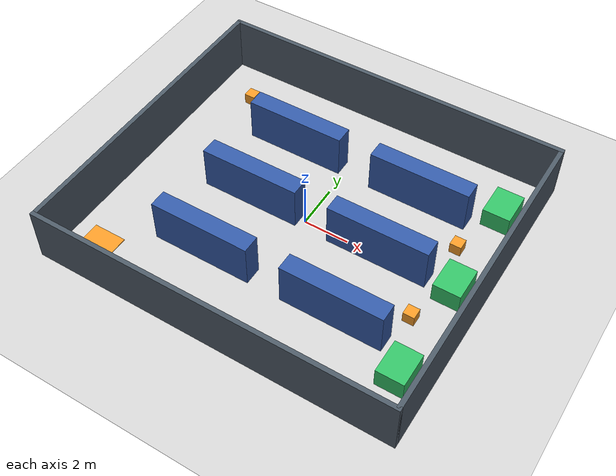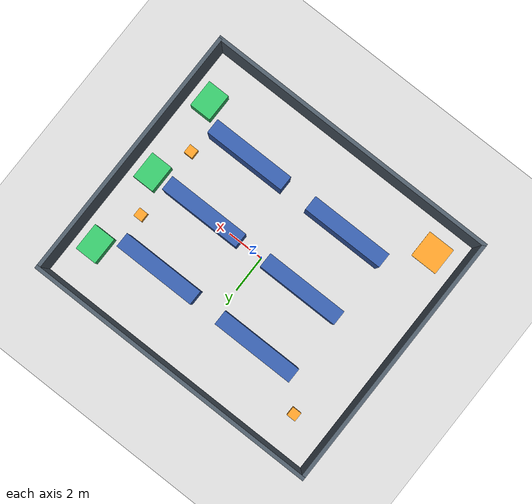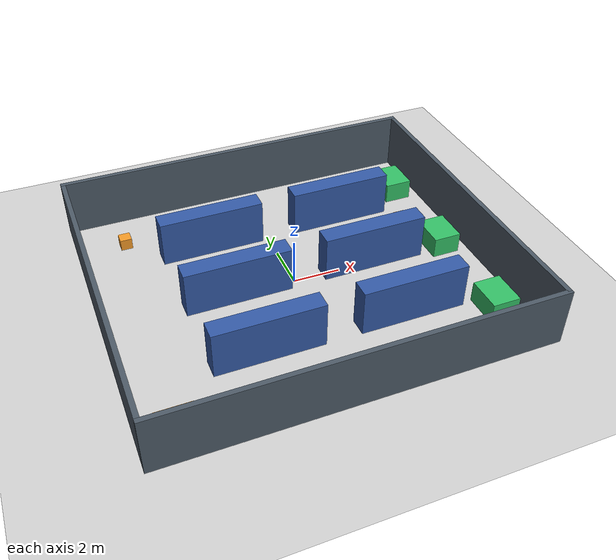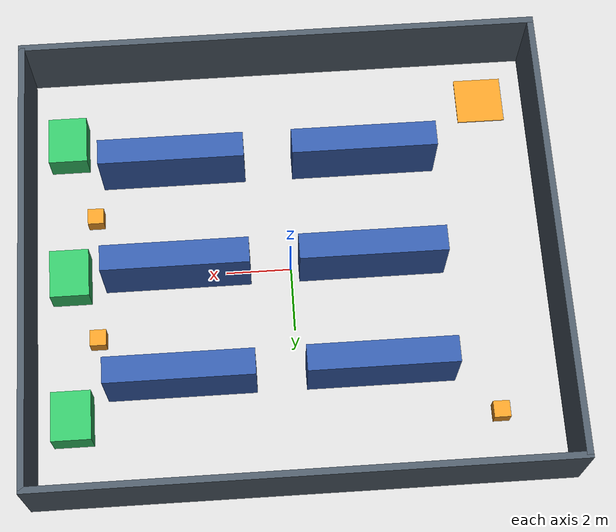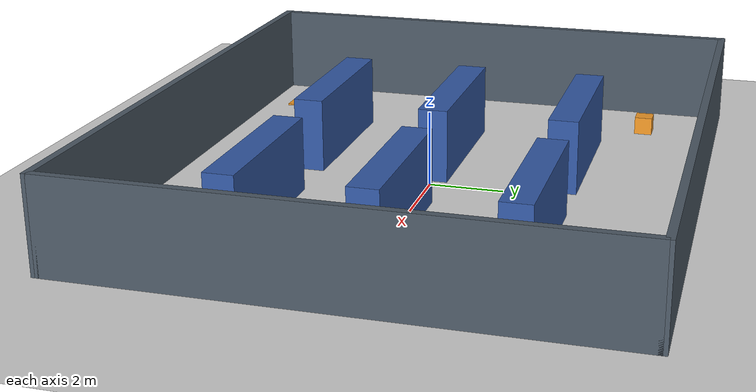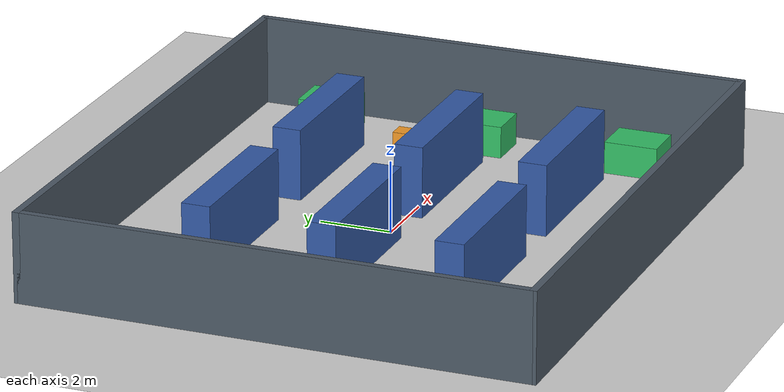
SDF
<?xml version="1.0" ?>
<sdf version="1.8">
  <world name="warehouse">
    <physics name="1ms" type="ignored">
      <max_step_size>0.002</max_step_size>
      <real_time_factor>1.0</real_time_factor>
    </physics>

    <!-- Essential Gazebo Harmonic Simulation Systems -->
    <plugin filename="gz-sim-physics-system" name="gz::sim::systems::Physics"/>
    <plugin filename="gz-sim-user-commands-system" name="gz::sim::systems::UserCommands"/>
    <plugin filename="gz-sim-scene-broadcaster-system" name="gz::sim::systems::SceneBroadcaster"/>
    <plugin filename="gz-sim-sensors-system" name="gz::sim::systems::Sensors">
      <render_engine>ogre2</render_engine>
    </plugin>
    <plugin filename="gz-sim-contact-system" name="gz::sim::systems::Contact"/>

    <!-- Lighting & Sun -->
    <light type="directional" name="sun">
      <cast_shadows>true</cast_shadows>
      <pose>0 0 10 0 0 0</pose>
      <diffuse>0.85 0.85 0.85 1</diffuse>
      <specular>0.2 0.2 0.2 1</specular>
      <direction>-0.5 0.1 -0.9</direction>
    </light>

    <scene>
      <ambient>0.6 0.6 0.6 1.0</ambient>
      <background>0.85 0.88 0.92 1.0</background>
      <grid>true</grid>
    </scene>

    <!-- Ground Floor -->
    <model name="ground_plane">
      <static>true</static>
      <link name="link">
        <collision name="collision">
          <geometry>
            <plane>
              <normal>0 0 1</normal>
              <size>50 50</size>
            </plane>
          </geometry>
          <surface>
            <friction>
              <ode>
                <mu>100</mu>
                <mu2>50</mu2>
              </ode>
            </friction>
          </surface>
        </collision>
        <visual name="visual">
          <geometry>
            <plane>
              <normal>0 0 1</normal>
              <size>30 30</size>
            </plane>
          </geometry>
          <material>
            <ambient>0.82 0.82 0.82 1</ambient>
            <diffuse>0.82 0.82 0.82 1</diffuse>
          </material>
        </visual>
      </link>
    </model>

    <!-- Perimeter Walls (16m x 14m Warehouse) -->
    <!-- North Wall -->
    <model name="wall_north">
      <static>true</static>
      <pose>0 7.0 1.25 0 0 0</pose>
      <link name="link">
        <collision name="collision">
          <geometry><box><size>16.2 0.2 2.5</size></box></geometry>
        </collision>
        <visual name="visual">
          <geometry><box><size>16.2 0.2 2.5</size></box></geometry>
          <material>
            <ambient>0.3 0.35 0.4 1</ambient>
            <diffuse>0.3 0.35 0.4 1</diffuse>
          </material>
        </visual>
      </link>
    </model>

    <!-- South Wall -->
    <model name="wall_south">
      <static>true</static>
      <pose>0 -7.0 1.25 0 0 0</pose>
      <link name="link">
        <collision name="collision">
          <geometry><box><size>16.2 0.2 2.5</size></box></geometry>
        </collision>
        <visual name="visual">
          <geometry><box><size>16.2 0.2 2.5</size></box></geometry>
          <material>
            <ambient>0.3 0.35 0.4 1</ambient>
            <diffuse>0.3 0.35 0.4 1</diffuse>
          </material>
        </visual>
      </link>
    </model>

    <!-- East Wall -->
    <model name="wall_east">
      <static>true</static>
      <pose>8.0 0 1.25 0 0 0</pose>
      <link name="link">
        <collision name="collision">
          <geometry><box><size>0.2 14.0 2.5</size></box></geometry>
        </collision>
        <visual name="visual">
          <geometry><box><size>0.2 14.0 2.5</size></box></geometry>
          <material>
            <ambient>0.3 0.35 0.4 1</ambient>
            <diffuse>0.3 0.35 0.4 1</diffuse>
          </material>
        </visual>
      </link>
    </model>

    <!-- West Wall -->
    <model name="wall_west">
      <static>true</static>
      <pose>-8.0 0 1.25 0 0 0</pose>
      <link name="link">
        <collision name="collision">
          <geometry><box><size>0.2 14.0 2.5</size></box></geometry>
        </collision>
        <visual name="visual">
          <geometry><box><size>0.2 14.0 2.5</size></box></geometry>
          <material>
            <ambient>0.3 0.35 0.4 1</ambient>
            <diffuse>0.3 0.35 0.4 1</diffuse>
          </material>
        </visual>
      </link>
    </model>

    <!-- Warehouse Storage Shelves (Aisle A, B, C) -->
    <!-- Shelf Row A1 -->
    <model name="shelf_a1">
      <static>true</static>
      <pose>-2.5 3.5 1.0 0 0 0</pose>
      <link name="link">
        <collision name="collision">
          <geometry><box><size>4.5 0.8 2.0</size></box></geometry>
        </collision>
        <visual name="visual">
          <geometry><box><size>4.5 0.8 2.0</size></box></geometry>
          <material>
            <ambient>0.15 0.25 0.5 1</ambient>
            <diffuse>0.2 0.35 0.65 1</diffuse>
          </material>
        </visual>
      </link>
    </model>

    <!-- Shelf Row A2 -->
    <model name="shelf_a2">
      <static>true</static>
      <pose>3.5 3.5 1.0 0 0 0</pose>
      <link name="link">
        <collision name="collision">
          <geometry><box><size>4.5 0.8 2.0</size></box></geometry>
        </collision>
        <visual name="visual">
          <geometry><box><size>4.5 0.8 2.0</size></box></geometry>
          <material>
            <ambient>0.15 0.25 0.5 1</ambient>
            <diffuse>0.2 0.35 0.65 1</diffuse>
          </material>
        </visual>
      </link>
    </model>

    <!-- Shelf Row B1 -->
    <model name="shelf_b1">
      <static>true</static>
      <pose>-2.5 0.0 1.0 0 0 0</pose>
      <link name="link">
        <collision name="collision">
          <geometry><box><size>4.5 0.8 2.0</size></box></geometry>
        </collision>
        <visual name="visual">
          <geometry><box><size>4.5 0.8 2.0</size></box></geometry>
          <material>
            <ambient>0.15 0.25 0.5 1</ambient>
            <diffuse>0.2 0.35 0.65 1</diffuse>
          </material>
        </visual>
      </link>
    </model>

    <!-- Shelf Row B2 -->
    <model name="shelf_b2">
      <static>true</static>
      <pose>3.5 0.0 1.0 0 0 0</pose>
      <link name="link">
        <collision name="collision">
          <geometry><box><size>4.5 0.8 2.0</size></box></geometry>
        </collision>
        <visual name="visual">
          <geometry><box><size>4.5 0.8 2.0</size></box></geometry>
          <material>
            <ambient>0.15 0.25 0.5 1</ambient>
            <diffuse>0.2 0.35 0.65 1</diffuse>
          </material>
        </visual>
      </link>
    </model>

    <!-- Shelf Row C1 -->
    <model name="shelf_c1">
      <static>true</static>
      <pose>-2.5 -3.5 1.0 0 0 0</pose>
      <link name="link">
        <collision name="collision">
          <geometry><box><size>4.5 0.8 2.0</size></box></geometry>
        </collision>
        <visual name="visual">
          <geometry><box><size>4.5 0.8 2.0</size></box></geometry>
          <material>
            <ambient>0.15 0.25 0.5 1</ambient>
            <diffuse>0.2 0.35 0.65 1</diffuse>
          </material>
        </visual>
      </link>
    </model>

    <!-- Shelf Row C2 -->
    <model name="shelf_c2">
      <static>true</static>
      <pose>3.5 -3.5 1.0 0 0 0</pose>
      <link name="link">
        <collision name="collision">
          <geometry><box><size>4.5 0.8 2.0</size></box></geometry>
        </collision>
        <visual name="visual">
          <geometry><box><size>4.5 0.8 2.0</size></box></geometry>
          <material>
            <ambient>0.15 0.25 0.5 1</ambient>
            <diffuse>0.2 0.35 0.65 1</diffuse>
          </material>
        </visual>
      </link>
    </model>

    <!-- Delivery Workstations (East side) -->
    <!-- Station 1 -->
    <model name="station_1">
      <static>true</static>
      <pose>6.8 4.5 0.45 0 0 0</pose>
      <link name="link">
        <collision name="collision">
          <geometry><box><size>1.2 1.5 0.9</size></box></geometry>
        </collision>
        <visual name="visual">
          <geometry><box><size>1.2 1.5 0.9</size></box></geometry>
          <material>
            <ambient>0.1 0.6 0.3 1</ambient>
            <diffuse>0.2 0.75 0.4 1</diffuse>
          </material>
        </visual>
      </link>
    </model>

    <!-- Station 2 -->
    <model name="station_2">
      <static>true</static>
      <pose>6.8 0.0 0.45 0 0 0</pose>
      <link name="link">
        <collision name="collision">
          <geometry><box><size>1.2 1.5 0.9</size></box></geometry>
        </collision>
        <visual name="visual">
          <geometry><box><size>1.2 1.5 0.9</size></box></geometry>
          <material>
            <ambient>0.1 0.6 0.3 1</ambient>
            <diffuse>0.2 0.75 0.4 1</diffuse>
          </material>
        </visual>
      </link>
    </model>

    <!-- Station 3 -->
    <model name="station_3">
      <static>true</static>
      <pose>6.8 -4.5 0.45 0 0 0</pose>
      <link name="link">
        <collision name="collision">
          <geometry><box><size>1.2 1.5 0.9</size></box></geometry>
        </collision>
        <visual name="visual">
          <geometry><box><size>1.2 1.5 0.9</size></box></geometry>
          <material>
            <ambient>0.1 0.6 0.3 1</ambient>
            <diffuse>0.2 0.75 0.4 1</diffuse>
          </material>
        </visual>
      </link>
    </model>

    <!-- Sample packages from warehouse.yaml -->
    <model name="package_a12">
      <static>true</static>
      <pose>-6.0 5.0 0.25 0 0 0</pose>
      <link name="link">
        <collision name="collision">
          <geometry><box><size>0.5 0.5 0.5</size></box></geometry>
        </collision>
        <visual name="visual">
          <geometry><box><size>0.5 0.5 0.5</size></box></geometry>
          <material>
            <ambient>0.8 0.45 0.1 1</ambient>
            <diffuse>0.95 0.6 0.15 1</diffuse>
          </material>
        </visual>
      </link>
    </model>

    <model name="package_b21">
      <static>true</static>
      <pose>6.0 2.0 0.25 0 0 0</pose>
      <link name="link">
        <collision name="collision">
          <geometry><box><size>0.5 0.5 0.5</size></box></geometry>
        </collision>
        <visual name="visual">
          <geometry><box><size>0.5 0.5 0.5</size></box></geometry>
          <material>
            <ambient>0.8 0.45 0.1 1</ambient>
            <diffuse>0.95 0.6 0.15 1</diffuse>
          </material>
        </visual>
      </link>
    </model>

    <model name="package_c07">
      <static>true</static>
      <pose>6.0 -2.0 0.25 0 0 0</pose>
      <link name="link">
        <collision name="collision">
          <geometry><box><size>0.5 0.5 0.5</size></box></geometry>
        </collision>
        <visual name="visual">
          <geometry><box><size>0.5 0.5 0.5</size></box></geometry>
          <material>
            <ambient>0.8 0.45 0.1 1</ambient>
            <diffuse>0.95 0.6 0.15 1</diffuse>
          </material>
        </visual>
      </link>
    </model>

    <!-- Charging / Home Station Pad (West side) -->
    <model name="home_dock">
      <static>true</static>
      <pose>-6.5 -5.5 0.02 0 0 0</pose>
      <link name="link">
        <visual name="visual">
          <geometry><box><size>1.5 1.5 0.04</size></box></geometry>
          <material>
            <ambient>0.9 0.5 0.1 1</ambient>
            <diffuse>0.95 0.6 0.15 1</diffuse>
          </material>
        </visual>
      </link>
    </model>

  </world>
</sdf>
